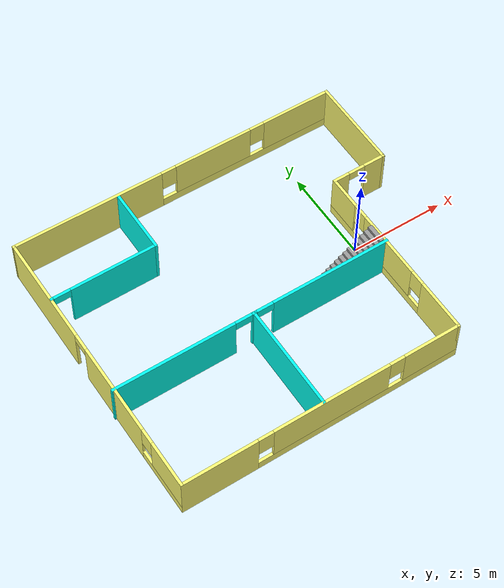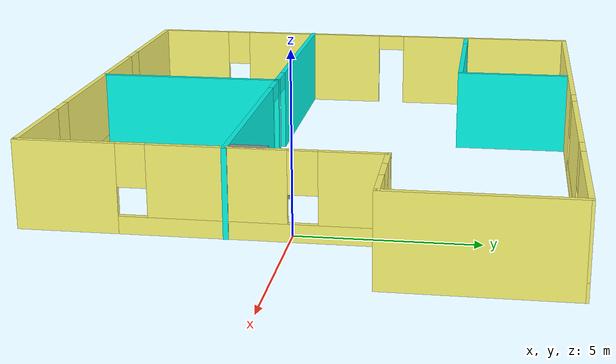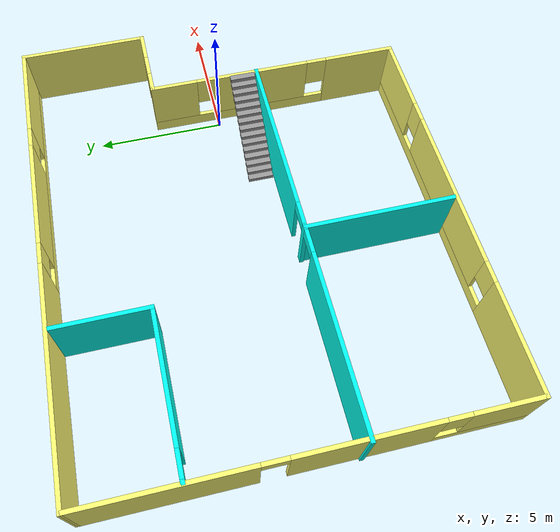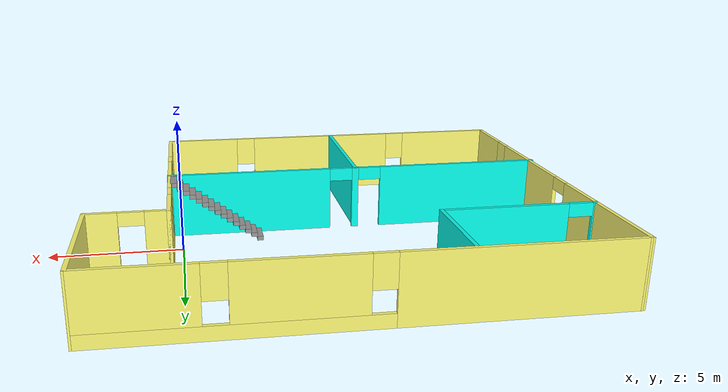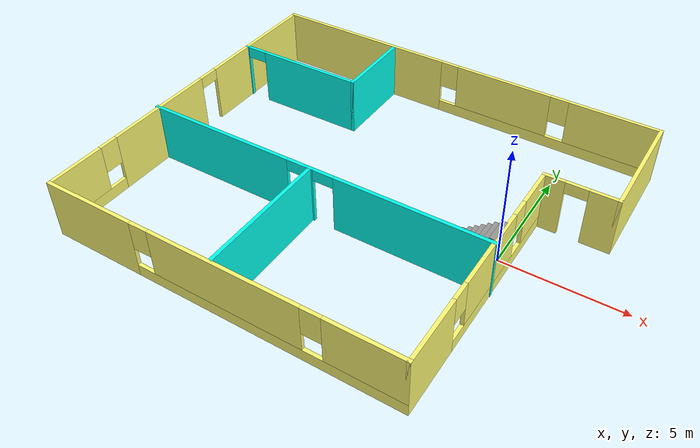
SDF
<?xml version='1.0'?>
<sdf version='1.6'>
  <model name='thuanld5_building'>
    <pose frame=''>-5.61753 0.112232 0 0 -0 0</pose>
    <link name='Stairs_0'>
      <visual name='Stairs_0_Visual_0'>
        <pose frame=''>2.62014 -1.19086 0.083333 0 -0 1.5708</pose>
        <geometry>
          <box>
            <size>1 0.233333 0.166667</size>
          </box>
        </geometry>
        <material>
          <script>
            <uri>file://media/materials/scripts/gazebo.material</uri>
            <name>Gazebo/Grey</name>
          </script>
          <ambient>1 1 1 1</ambient>
        </material>
        <meta>
          <layer>0</layer>
        </meta>
      </visual>
      <collision name='Stairs_0_Collision_0'>
        <geometry>
          <box>
            <size>1 0.233333 0.166667</size>
          </box>
        </geometry>
        <pose frame=''>2.62014 -1.19086 0.083333 0 -0 1.5708</pose>
      </collision>
      <visual name='Stairs_0_Visual_1'>
        <pose frame=''>2.85347 -1.19086 0.25 0 -0 1.5708</pose>
        <geometry>
          <box>
            <size>1 0.233333 0.166667</size>
          </box>
        </geometry>
        <material>
          <script>
            <uri>file://media/materials/scripts/gazebo.material</uri>
            <name>Gazebo/Grey</name>
          </script>
          <ambient>1 1 1 1</ambient>
        </material>
        <meta>
          <layer>0</layer>
        </meta>
      </visual>
      <collision name='Stairs_0_Collision_1'>
        <geometry>
          <box>
            <size>1 0.233333 0.166667</size>
          </box>
        </geometry>
        <pose frame=''>2.85347 -1.19086 0.25 0 -0 1.5708</pose>
      </collision>
      <visual name='Stairs_0_Visual_2'>
        <pose frame=''>3.0868 -1.19086 0.416667 0 -0 1.5708</pose>
        <geometry>
          <box>
            <size>1 0.233333 0.166667</size>
          </box>
        </geometry>
        <material>
          <script>
            <uri>file://media/materials/scripts/gazebo.material</uri>
            <name>Gazebo/Grey</name>
          </script>
          <ambient>1 1 1 1</ambient>
        </material>
        <meta>
          <layer>0</layer>
        </meta>
      </visual>
      <collision name='Stairs_0_Collision_2'>
        <geometry>
          <box>
            <size>1 0.233333 0.166667</size>
          </box>
        </geometry>
        <pose frame=''>3.0868 -1.19086 0.416667 0 -0 1.5708</pose>
      </collision>
      <visual name='Stairs_0_Visual_3'>
        <pose frame=''>3.32014 -1.19086 0.583333 0 -0 1.5708</pose>
        <geometry>
          <box>
            <size>1 0.233333 0.166667</size>
          </box>
        </geometry>
        <material>
          <script>
            <uri>file://media/materials/scripts/gazebo.material</uri>
            <name>Gazebo/Grey</name>
          </script>
          <ambient>1 1 1 1</ambient>
        </material>
        <meta>
          <layer>0</layer>
        </meta>
      </visual>
      <collision name='Stairs_0_Collision_3'>
        <geometry>
          <box>
            <size>1 0.233333 0.166667</size>
          </box>
        </geometry>
        <pose frame=''>3.32014 -1.19086 0.583333 0 -0 1.5708</pose>
      </collision>
      <visual name='Stairs_0_Visual_4'>
        <pose frame=''>3.55347 -1.19086 0.75 0 -0 1.5708</pose>
        <geometry>
          <box>
            <size>1 0.233333 0.166667</size>
          </box>
        </geometry>
        <material>
          <script>
            <uri>file://media/materials/scripts/gazebo.material</uri>
            <name>Gazebo/Grey</name>
          </script>
          <ambient>1 1 1 1</ambient>
        </material>
        <meta>
          <layer>0</layer>
        </meta>
      </visual>
      <collision name='Stairs_0_Collision_4'>
        <geometry>
          <box>
            <size>1 0.233333 0.166667</size>
          </box>
        </geometry>
        <pose frame=''>3.55347 -1.19086 0.75 0 -0 1.5708</pose>
      </collision>
      <visual name='Stairs_0_Visual_5'>
        <pose frame=''>3.7868 -1.19086 0.916667 0 -0 1.5708</pose>
        <geometry>
          <box>
            <size>1 0.233333 0.166667</size>
          </box>
        </geometry>
        <material>
          <script>
            <uri>file://media/materials/scripts/gazebo.material</uri>
            <name>Gazebo/Grey</name>
          </script>
          <ambient>1 1 1 1</ambient>
        </material>
        <meta>
          <layer>0</layer>
        </meta>
      </visual>
      <collision name='Stairs_0_Collision_5'>
        <geometry>
          <box>
            <size>1 0.233333 0.166667</size>
          </box>
        </geometry>
        <pose frame=''>3.7868 -1.19086 0.916667 0 -0 1.5708</pose>
      </collision>
      <visual name='Stairs_0_Visual_6'>
        <pose frame=''>4.02014 -1.19086 1.08333 0 -0 1.5708</pose>
        <geometry>
          <box>
            <size>1 0.233333 0.166667</size>
          </box>
        </geometry>
        <material>
          <script>
            <uri>file://media/materials/scripts/gazebo.material</uri>
            <name>Gazebo/Grey</name>
          </script>
          <ambient>1 1 1 1</ambient>
        </material>
        <meta>
          <layer>0</layer>
        </meta>
      </visual>
      <collision name='Stairs_0_Collision_6'>
        <geometry>
          <box>
            <size>1 0.233333 0.166667</size>
          </box>
        </geometry>
        <pose frame=''>4.02014 -1.19086 1.08333 0 -0 1.5708</pose>
      </collision>
      <visual name='Stairs_0_Visual_7'>
        <pose frame=''>4.25347 -1.19086 1.25 0 -0 1.5708</pose>
        <geometry>
          <box>
            <size>1 0.233333 0.166667</size>
          </box>
        </geometry>
        <material>
          <script>
            <uri>file://media/materials/scripts/gazebo.material</uri>
            <name>Gazebo/Grey</name>
          </script>
          <ambient>1 1 1 1</ambient>
        </material>
        <meta>
          <layer>0</layer>
        </meta>
      </visual>
      <collision name='Stairs_0_Collision_7'>
        <geometry>
          <box>
            <size>1 0.233333 0.166667</size>
          </box>
        </geometry>
        <pose frame=''>4.25347 -1.19086 1.25 0 -0 1.5708</pose>
      </collision>
      <visual name='Stairs_0_Visual_8'>
        <pose frame=''>4.4868 -1.19086 1.41667 0 -0 1.5708</pose>
        <geometry>
          <box>
            <size>1 0.233333 0.166667</size>
          </box>
        </geometry>
        <material>
          <script>
            <uri>file://media/materials/scripts/gazebo.material</uri>
            <name>Gazebo/Grey</name>
          </script>
          <ambient>1 1 1 1</ambient>
        </material>
        <meta>
          <layer>0</layer>
        </meta>
      </visual>
      <collision name='Stairs_0_Collision_8'>
        <geometry>
          <box>
            <size>1 0.233333 0.166667</size>
          </box>
        </geometry>
        <pose frame=''>4.4868 -1.19086 1.41667 0 -0 1.5708</pose>
      </collision>
      <visual name='Stairs_0_Visual_9'>
        <pose frame=''>4.72014 -1.19086 1.58333 0 -0 1.5708</pose>
        <geometry>
          <box>
            <size>1 0.233333 0.166667</size>
          </box>
        </geometry>
        <material>
          <script>
            <uri>file://media/materials/scripts/gazebo.material</uri>
            <name>Gazebo/Grey</name>
          </script>
          <ambient>1 1 1 1</ambient>
        </material>
        <meta>
          <layer>0</layer>
        </meta>
      </visual>
      <collision name='Stairs_0_Collision_9'>
        <geometry>
          <box>
            <size>1 0.233333 0.166667</size>
          </box>
        </geometry>
        <pose frame=''>4.72014 -1.19086 1.58333 0 -0 1.5708</pose>
      </collision>
      <visual name='Stairs_0_Visual_10'>
        <pose frame=''>4.95347 -1.19086 1.75 0 -0 1.5708</pose>
        <geometry>
          <box>
            <size>1 0.233333 0.166667</size>
          </box>
        </geometry>
        <material>
          <script>
            <uri>file://media/materials/scripts/gazebo.material</uri>
            <name>Gazebo/Grey</name>
          </script>
          <ambient>1 1 1 1</ambient>
        </material>
        <meta>
          <layer>0</layer>
        </meta>
      </visual>
      <collision name='Stairs_0_Collision_10'>
        <geometry>
          <box>
            <size>1 0.233333 0.166667</size>
          </box>
        </geometry>
        <pose frame=''>4.95347 -1.19086 1.75 0 -0 1.5708</pose>
      </collision>
      <visual name='Stairs_0_Visual_11'>
        <pose frame=''>5.1868 -1.19086 1.91667 0 -0 1.5708</pose>
        <geometry>
          <box>
            <size>1 0.233333 0.166667</size>
          </box>
        </geometry>
        <material>
          <script>
            <uri>file://media/materials/scripts/gazebo.material</uri>
            <name>Gazebo/Grey</name>
          </script>
          <ambient>1 1 1 1</ambient>
        </material>
        <meta>
          <layer>0</layer>
        </meta>
      </visual>
      <collision name='Stairs_0_Collision_11'>
        <geometry>
          <box>
            <size>1 0.233333 0.166667</size>
          </box>
        </geometry>
        <pose frame=''>5.1868 -1.19086 1.91667 0 -0 1.5708</pose>
      </collision>
      <visual name='Stairs_0_Visual_12'>
        <pose frame=''>5.42014 -1.19086 2.08333 0 -0 1.5708</pose>
        <geometry>
          <box>
            <size>1 0.233333 0.166667</size>
          </box>
        </geometry>
        <material>
          <script>
            <uri>file://media/materials/scripts/gazebo.material</uri>
            <name>Gazebo/Grey</name>
          </script>
          <ambient>1 1 1 1</ambient>
        </material>
        <meta>
          <layer>0</layer>
        </meta>
      </visual>
      <collision name='Stairs_0_Collision_12'>
        <geometry>
          <box>
            <size>1 0.233333 0.166667</size>
          </box>
        </geometry>
        <pose frame=''>5.42014 -1.19086 2.08333 0 -0 1.5708</pose>
      </collision>
      <visual name='Stairs_0_Visual_13'>
        <pose frame=''>5.65347 -1.19086 2.25 0 -0 1.5708</pose>
        <geometry>
          <box>
            <size>1 0.233333 0.166667</size>
          </box>
        </geometry>
        <material>
          <script>
            <uri>file://media/materials/scripts/gazebo.material</uri>
            <name>Gazebo/Grey</name>
          </script>
          <ambient>1 1 1 1</ambient>
        </material>
        <meta>
          <layer>0</layer>
        </meta>
      </visual>
      <collision name='Stairs_0_Collision_13'>
        <geometry>
          <box>
            <size>1 0.233333 0.166667</size>
          </box>
        </geometry>
        <pose frame=''>5.65347 -1.19086 2.25 0 -0 1.5708</pose>
      </collision>
      <visual name='Stairs_0_Visual_14'>
        <pose frame=''>5.8868 -1.19086 2.41667 0 -0 1.5708</pose>
        <geometry>
          <box>
            <size>1 0.233333 0.166667</size>
          </box>
        </geometry>
        <material>
          <script>
            <uri>file://media/materials/scripts/gazebo.material</uri>
            <name>Gazebo/Grey</name>
          </script>
          <ambient>1 1 1 1</ambient>
        </material>
        <meta>
          <layer>0</layer>
        </meta>
      </visual>
      <collision name='Stairs_0_Collision_14'>
        <geometry>
          <box>
            <size>1 0.233333 0.166667</size>
          </box>
        </geometry>
        <pose frame=''>5.8868 -1.19086 2.41667 0 -0 1.5708</pose>
      </collision>
    </link>
    <link name='Wall_1'>
      <pose frame=''>-8.81315 -0.000316 0 0 0 -1.5708</pose>
      <visual name='Wall_1_Visual_0'>
        <pose frame=''>-4.54954 0 1.25 0 -0 0</pose>
        <geometry>
          <box>
            <size>5.90092 0.15 2.5</size>
          </box>
        </geometry>
        <material>
          <script>
            <uri>file://media/materials/scripts/gazebo.material</uri>
            <name>Gazebo/Grey</name>
          </script>
          <ambient>1 0.984314 0.454902 1</ambient>
        </material>
        <meta>
          <layer>0</layer>
        </meta>
      </visual>
      <collision name='Wall_1_Collision_0'>
        <geometry>
          <box>
            <size>5.90092 0.15 2.5</size>
          </box>
        </geometry>
        <pose frame=''>-4.54954 0 1.25 0 -0 0</pose>
      </collision>
      <visual name='Wall_1_Visual_1'>
        <pose frame=''>1.75546 0 1.25 0 -0 0</pose>
        <geometry>
          <box>
            <size>4.90908 0.15 2.5</size>
          </box>
        </geometry>
        <material>
          <script>
            <uri>file://media/materials/scripts/gazebo.material</uri>
            <name>Gazebo/Grey</name>
          </script>
          <ambient>1 0.984314 0.454902 1</ambient>
        </material>
        <meta>
          <layer>0</layer>
        </meta>
      </visual>
      <collision name='Wall_1_Collision_1'>
        <geometry>
          <box>
            <size>4.90908 0.15 2.5</size>
          </box>
        </geometry>
        <pose frame=''>1.75546 0 1.25 0 -0 0</pose>
      </collision>
      <visual name='Wall_1_Visual_2'>
        <pose frame=''>5.855 0 0.25 0 -0 0</pose>
        <geometry>
          <box>
            <size>3.29 0.15 0.5</size>
          </box>
        </geometry>
        <material>
          <script>
            <uri>file://media/materials/scripts/gazebo.material</uri>
            <name>Gazebo/Grey</name>
          </script>
          <ambient>1 0.984314 0.454902 1</ambient>
        </material>
        <meta>
          <layer>0</layer>
        </meta>
      </visual>
      <collision name='Wall_1_Collision_2'>
        <geometry>
          <box>
            <size>3.29 0.15 0.5</size>
          </box>
        </geometry>
        <pose frame=''>5.855 0 0.25 0 -0 0</pose>
      </collision>
      <visual name='Wall_1_Visual_3'>
        <pose frame=''>6.255 0 1.5 0 -0 0</pose>
        <geometry>
          <box>
            <size>2.49 0.15 2</size>
          </box>
        </geometry>
        <material>
          <script>
            <uri>file://media/materials/scripts/gazebo.material</uri>
            <name>Gazebo/Grey</name>
          </script>
          <ambient>1 0.984314 0.454902 1</ambient>
        </material>
        <meta>
          <layer>0</layer>
        </meta>
      </visual>
      <collision name='Wall_1_Collision_3'>
        <geometry>
          <box>
            <size>2.49 0.15 2</size>
          </box>
        </geometry>
        <pose frame=''>6.255 0 1.5 0 -0 0</pose>
      </collision>
      <visual name='Wall_1_Visual_4'>
        <pose frame=''>4.61 0 1.9 0 -0 0</pose>
        <geometry>
          <box>
            <size>0.8 0.15 1.2</size>
          </box>
        </geometry>
        <material>
          <script>
            <uri>file://media/materials/scripts/gazebo.material</uri>
            <name>Gazebo/Grey</name>
          </script>
          <ambient>1 0.984314 0.454902 1</ambient>
        </material>
        <meta>
          <layer>0</layer>
        </meta>
      </visual>
      <collision name='Wall_1_Collision_4'>
        <geometry>
          <box>
            <size>0.8 0.15 1.2</size>
          </box>
        </geometry>
        <pose frame=''>4.61 0 1.9 0 -0 0</pose>
      </collision>
      <visual name='Wall_1_Visual_5'>
        <pose frame=''>-1.14908 0 2.25 0 -0 0</pose>
        <geometry>
          <box>
            <size>0.9 0.15 0.5</size>
          </box>
        </geometry>
        <material>
          <script>
            <uri>file://media/materials/scripts/gazebo.material</uri>
            <name>Gazebo/Grey</name>
          </script>
          <ambient>1 0.984314 0.454902 1</ambient>
        </material>
        <meta>
          <layer>0</layer>
        </meta>
      </visual>
      <collision name='Wall_1_Collision_5'>
        <geometry>
          <box>
            <size>0.9 0.15 0.5</size>
          </box>
        </geometry>
        <pose frame=''>-1.14908 0 2.25 0 -0 0</pose>
      </collision>
    </link>
    <link name='Wall_11'>
      <pose frame=''>0.036853 7.34968 0 0 0 -0.008474</pose>
      <visual name='Wall_11_Visual_0'>
        <pose frame=''>-4.85351 0 1.25 0 -0 0</pose>
        <geometry>
          <box>
            <size>8.14362 0.15 2.5</size>
          </box>
        </geometry>
        <material>
          <script>
            <uri>file://media/materials/scripts/gazebo.material</uri>
            <name>Gazebo/Grey</name>
          </script>
          <ambient>1 0.984314 0.454902 1</ambient>
        </material>
        <meta>
          <layer>0</layer>
        </meta>
      </visual>
      <collision name='Wall_11_Collision_0'>
        <geometry>
          <box>
            <size>8.14362 0.15 2.5</size>
          </box>
        </geometry>
        <pose frame=''>-4.85351 0 1.25 0 -0 0</pose>
      </collision>
      <visual name='Wall_11_Visual_1'>
        <pose frame=''>4.07181 0 0.25 0 -0 0</pose>
        <geometry>
          <box>
            <size>9.70702 0.15 0.5</size>
          </box>
        </geometry>
        <material>
          <script>
            <uri>file://media/materials/scripts/gazebo.material</uri>
            <name>Gazebo/Grey</name>
          </script>
          <ambient>1 0.984314 0.454902 1</ambient>
        </material>
        <meta>
          <layer>0</layer>
        </meta>
      </visual>
      <collision name='Wall_11_Collision_1'>
        <geometry>
          <box>
            <size>9.70702 0.15 0.5</size>
          </box>
        </geometry>
        <pose frame=''>4.07181 0 0.25 0 -0 0</pose>
      </collision>
      <visual name='Wall_11_Visual_2'>
        <pose frame=''>2.15497 0 1.5 0 -0 0</pose>
        <geometry>
          <box>
            <size>4.27333 0.15 2</size>
          </box>
        </geometry>
        <material>
          <script>
            <uri>file://media/materials/scripts/gazebo.material</uri>
            <name>Gazebo/Grey</name>
          </script>
          <ambient>1 0.984314 0.454902 1</ambient>
        </material>
        <meta>
          <layer>0</layer>
        </meta>
      </visual>
      <collision name='Wall_11_Collision_2'>
        <geometry>
          <box>
            <size>4.27333 0.15 2</size>
          </box>
        </geometry>
        <pose frame=''>2.15497 0 1.5 0 -0 0</pose>
      </collision>
      <visual name='Wall_11_Visual_3'>
        <pose frame=''>7.00848 0 1.5 0 -0 0</pose>
        <geometry>
          <box>
            <size>3.83368 0.15 2</size>
          </box>
        </geometry>
        <material>
          <script>
            <uri>file://media/materials/scripts/gazebo.material</uri>
            <name>Gazebo/Grey</name>
          </script>
          <ambient>1 0.984314 0.454902 1</ambient>
        </material>
        <meta>
          <layer>0</layer>
        </meta>
      </visual>
      <collision name='Wall_11_Collision_3'>
        <geometry>
          <box>
            <size>3.83368 0.15 2</size>
          </box>
        </geometry>
        <pose frame=''>7.00848 0 1.5 0 -0 0</pose>
      </collision>
      <visual name='Wall_11_Visual_4'>
        <pose frame=''>-0.381699 0 1.9 0 -0 0</pose>
        <geometry>
          <box>
            <size>0.8 0.15 1.2</size>
          </box>
        </geometry>
        <material>
          <script>
            <uri>file://media/materials/scripts/gazebo.material</uri>
            <name>Gazebo/Grey</name>
          </script>
          <ambient>1 0.984314 0.454902 1</ambient>
        </material>
        <meta>
          <layer>0</layer>
        </meta>
      </visual>
      <collision name='Wall_11_Collision_4'>
        <geometry>
          <box>
            <size>0.8 0.15 1.2</size>
          </box>
        </geometry>
        <pose frame=''>-0.381699 0 1.9 0 -0 0</pose>
      </collision>
      <visual name='Wall_11_Visual_5'>
        <pose frame=''>4.69163 0 1.9 0 -0 0</pose>
        <geometry>
          <box>
            <size>0.8 0.15 1.2</size>
          </box>
        </geometry>
        <material>
          <script>
            <uri>file://media/materials/scripts/gazebo.material</uri>
            <name>Gazebo/Grey</name>
          </script>
          <ambient>1 0.984314 0.454902 1</ambient>
        </material>
        <meta>
          <layer>0</layer>
        </meta>
      </visual>
      <collision name='Wall_11_Collision_5'>
        <geometry>
          <box>
            <size>0.8 0.15 1.2</size>
          </box>
        </geometry>
        <pose frame=''>4.69163 0 1.9 0 -0 0</pose>
      </collision>
    </link>
    <link name='Wall_13'>
      <pose frame=''>2.31733 -1.79572 0 0 -0 3.14159</pose>
      <visual name='Wall_13_Visual_0'>
        <pose frame=''>-0.580037 0 1.25 0 -0 0</pose>
        <geometry>
          <box>
            <size>6.48029 0.15 2.5</size>
          </box>
        </geometry>
        <material>
          <script>
            <uri>file://media/materials/scripts/gazebo.material</uri>
            <name>Gazebo/Grey</name>
          </script>
          <ambient>0.0117647 1 0.937255 1</ambient>
        </material>
        <meta>
          <layer>0</layer>
        </meta>
      </visual>
      <collision name='Wall_13_Collision_0'>
        <geometry>
          <box>
            <size>6.48029 0.15 2.5</size>
          </box>
        </geometry>
        <pose frame=''>-0.580037 0 1.25 0 -0 0</pose>
      </collision>
      <visual name='Wall_13_Visual_1'>
        <pose frame=''>3.69014 0 1.25 0 -0 0</pose>
        <geometry>
          <box>
            <size>0.260074 0.15 2.5</size>
          </box>
        </geometry>
        <material>
          <script>
            <uri>file://media/materials/scripts/gazebo.material</uri>
            <name>Gazebo/Grey</name>
          </script>
          <ambient>0.0117647 1 0.937255 1</ambient>
        </material>
        <meta>
          <layer>0</layer>
        </meta>
      </visual>
      <collision name='Wall_13_Collision_1'>
        <geometry>
          <box>
            <size>0.260074 0.15 2.5</size>
          </box>
        </geometry>
        <pose frame=''>3.69014 0 1.25 0 -0 0</pose>
      </collision>
      <visual name='Wall_13_Visual_2'>
        <pose frame=''>3.11011 0 2.25 0 -0 0</pose>
        <geometry>
          <box>
            <size>0.9 0.15 0.5</size>
          </box>
        </geometry>
        <material>
          <script>
            <uri>file://media/materials/scripts/gazebo.material</uri>
            <name>Gazebo/Grey</name>
          </script>
          <ambient>0.0117647 1 0.937255 1</ambient>
        </material>
        <meta>
          <layer>0</layer>
        </meta>
      </visual>
      <collision name='Wall_13_Collision_2'>
        <geometry>
          <box>
            <size>0.9 0.15 0.5</size>
          </box>
        </geometry>
        <pose frame=''>3.11011 0 2.25 0 -0 0</pose>
      </collision>
    </link>
    <link name='Wall_14'>
      <collision name='Wall_14_Collision'>
        <geometry>
          <box>
            <size>5.75 0.15 2.5</size>
          </box>
        </geometry>
        <pose frame=''>0 0 1.25 0 -0 0</pose>
      </collision>
      <visual name='Wall_14_Visual'>
        <pose frame=''>0 0 1.25 0 -0 0</pose>
        <geometry>
          <box>
            <size>5.75 0.15 2.5</size>
          </box>
        </geometry>
        <material>
          <script>
            <uri>file://media/materials/scripts/gazebo.material</uri>
            <name>Gazebo/Grey</name>
          </script>
          <ambient>0.0117647 1 0.937255 1</ambient>
        </material>
        <meta>
          <layer>0</layer>
        </meta>
      </visual>
      <pose frame=''>-1.38211 -4.59572 0 0 0 -1.5708</pose>
    </link>
    <link name='Wall_17'>
      <pose frame=''>-5.15767 -1.79572 0 0 -0 3.14159</pose>
      <visual name='Wall_17_Visual_0'>
        <pose frame=''>-3.72955 0 1.25 0 -0 0</pose>
        <geometry>
          <box>
            <size>0.150543 0.15 2.5</size>
          </box>
        </geometry>
        <material>
          <script>
            <uri>file://media/materials/scripts/gazebo.material</uri>
            <name>Gazebo/Grey</name>
          </script>
          <ambient>0.0117647 1 0.937255 1</ambient>
        </material>
        <meta>
          <layer>0</layer>
        </meta>
      </visual>
      <collision name='Wall_17_Collision_0'>
        <geometry>
          <box>
            <size>0.150543 0.15 2.5</size>
          </box>
        </geometry>
        <pose frame=''>-3.72955 0 1.25 0 -0 0</pose>
      </collision>
      <visual name='Wall_17_Visual_1'>
        <pose frame=''>0.525272 0 1.25 0 -0 0</pose>
        <geometry>
          <box>
            <size>6.55909 0.15 2.5</size>
          </box>
        </geometry>
        <material>
          <script>
            <uri>file://media/materials/scripts/gazebo.material</uri>
            <name>Gazebo/Grey</name>
          </script>
          <ambient>0.0117647 1 0.937255 1</ambient>
        </material>
        <meta>
          <layer>0</layer>
        </meta>
      </visual>
      <collision name='Wall_17_Collision_1'>
        <geometry>
          <box>
            <size>6.55909 0.15 2.5</size>
          </box>
        </geometry>
        <pose frame=''>0.525272 0 1.25 0 -0 0</pose>
      </collision>
      <visual name='Wall_17_Visual_2'>
        <pose frame=''>-3.20427 0 2.25 0 -0 0</pose>
        <geometry>
          <box>
            <size>0.9 0.15 0.5</size>
          </box>
        </geometry>
        <material>
          <script>
            <uri>file://media/materials/scripts/gazebo.material</uri>
            <name>Gazebo/Grey</name>
          </script>
          <ambient>0.0117647 1 0.937255 1</ambient>
        </material>
        <meta>
          <layer>0</layer>
        </meta>
      </visual>
      <collision name='Wall_17_Collision_2'>
        <geometry>
          <box>
            <size>0.9 0.15 0.5</size>
          </box>
        </geometry>
        <pose frame=''>-3.20427 0 2.25 0 -0 0</pose>
      </collision>
    </link>
    <link name='Wall_19'>
      <pose frame=''>-5.9804 3.89673 0 0 -0 0</pose>
      <visual name='Wall_19_Visual_0'>
        <pose frame=''>-2.79259 0 1.25 0 -0 0</pose>
        <geometry>
          <box>
            <size>0.16482 0.15 2.5</size>
          </box>
        </geometry>
        <material>
          <script>
            <uri>file://media/materials/scripts/gazebo.material</uri>
            <name>Gazebo/Grey</name>
          </script>
          <ambient>0.0117647 1 0.937255 1</ambient>
        </material>
        <meta>
          <layer>0</layer>
        </meta>
      </visual>
      <collision name='Wall_19_Collision_0'>
        <geometry>
          <box>
            <size>0.16482 0.15 2.5</size>
          </box>
        </geometry>
        <pose frame=''>-2.79259 0 1.25 0 -0 0</pose>
      </collision>
      <visual name='Wall_19_Visual_1'>
        <pose frame=''>0.53241 0 1.25 0 -0 0</pose>
        <geometry>
          <box>
            <size>4.68518 0.15 2.5</size>
          </box>
        </geometry>
        <material>
          <script>
            <uri>file://media/materials/scripts/gazebo.material</uri>
            <name>Gazebo/Grey</name>
          </script>
          <ambient>0.0117647 1 0.937255 1</ambient>
        </material>
        <meta>
          <layer>0</layer>
        </meta>
      </visual>
      <collision name='Wall_19_Collision_1'>
        <geometry>
          <box>
            <size>4.68518 0.15 2.5</size>
          </box>
        </geometry>
        <pose frame=''>0.53241 0 1.25 0 -0 0</pose>
      </collision>
      <visual name='Wall_19_Visual_2'>
        <pose frame=''>-2.26018 0 2.25 0 -0 0</pose>
        <geometry>
          <box>
            <size>0.9 0.15 0.5</size>
          </box>
        </geometry>
        <material>
          <script>
            <uri>file://media/materials/scripts/gazebo.material</uri>
            <name>Gazebo/Grey</name>
          </script>
          <ambient>0.0117647 1 0.937255 1</ambient>
        </material>
        <meta>
          <layer>0</layer>
        </meta>
      </visual>
      <collision name='Wall_19_Collision_2'>
        <geometry>
          <box>
            <size>0.9 0.15 0.5</size>
          </box>
        </geometry>
        <pose frame=''>-2.26018 0 2.25 0 -0 0</pose>
      </collision>
    </link>
    <link name='Wall_22'>
      <collision name='Wall_22_Collision'>
        <geometry>
          <box>
            <size>3.5 0.15 2.5</size>
          </box>
        </geometry>
        <pose frame=''>0 0 1.25 0 -0 0</pose>
      </collision>
      <visual name='Wall_22_Visual'>
        <pose frame=''>0 0 1.25 0 -0 0</pose>
        <geometry>
          <box>
            <size>3.5 0.15 2.5</size>
          </box>
        </geometry>
        <material>
          <script>
            <uri>file://media/materials/scripts/gazebo.material</uri>
            <name>Gazebo/Grey</name>
          </script>
          <ambient>0.0117647 1 0.937255 1</ambient>
        </material>
        <meta>
          <layer>0</layer>
        </meta>
      </visual>
      <pose frame=''>-3.1804 5.57173 0 0 -0 1.5708</pose>
    </link>
    <link name='Wall_3'>
      <pose frame=''>-1.38815 -7.42532 0 0 -0 0</pose>
      <visual name='Wall_3_Visual_0'>
        <pose frame=''>-5.48932 0 1.25 0 -0 0</pose>
        <geometry>
          <box>
            <size>4.02135 0.15 2.5</size>
          </box>
        </geometry>
        <material>
          <script>
            <uri>file://media/materials/scripts/gazebo.material</uri>
            <name>Gazebo/Grey</name>
          </script>
          <ambient>1 0.984314 0.454902 1</ambient>
        </material>
        <meta>
          <layer>0</layer>
        </meta>
      </visual>
      <collision name='Wall_3_Collision_0'>
        <geometry>
          <box>
            <size>4.02135 0.15 2.5</size>
          </box>
        </geometry>
        <pose frame=''>-5.48932 0 1.25 0 -0 0</pose>
      </collision>
      <visual name='Wall_3_Visual_1'>
        <pose frame=''>2.01068 0 0.25 0 -0 0</pose>
        <geometry>
          <box>
            <size>10.9786 0.15 0.5</size>
          </box>
        </geometry>
        <material>
          <script>
            <uri>file://media/materials/scripts/gazebo.material</uri>
            <name>Gazebo/Grey</name>
          </script>
          <ambient>1 0.984314 0.454902 1</ambient>
        </material>
        <meta>
          <layer>0</layer>
        </meta>
      </visual>
      <collision name='Wall_3_Collision_1'>
        <geometry>
          <box>
            <size>10.9786 0.15 0.5</size>
          </box>
        </geometry>
        <pose frame=''>2.01068 0 0.25 0 -0 0</pose>
      </collision>
      <visual name='Wall_3_Visual_2'>
        <pose frame=''>0.461355 0 1.5 0 -0 0</pose>
        <geometry>
          <box>
            <size>6.28 0.15 2</size>
          </box>
        </geometry>
        <material>
          <script>
            <uri>file://media/materials/scripts/gazebo.material</uri>
            <name>Gazebo/Grey</name>
          </script>
          <ambient>1 0.984314 0.454902 1</ambient>
        </material>
        <meta>
          <layer>0</layer>
        </meta>
      </visual>
      <collision name='Wall_3_Collision_2'>
        <geometry>
          <box>
            <size>6.28 0.15 2</size>
          </box>
        </geometry>
        <pose frame=''>0.461355 0 1.5 0 -0 0</pose>
      </collision>
      <visual name='Wall_3_Visual_3'>
        <pose frame=''>5.95068 0 1.5 0 -0 0</pose>
        <geometry>
          <box>
            <size>3.09864 0.15 2</size>
          </box>
        </geometry>
        <material>
          <script>
            <uri>file://media/materials/scripts/gazebo.material</uri>
            <name>Gazebo/Grey</name>
          </script>
          <ambient>1 0.984314 0.454902 1</ambient>
        </material>
        <meta>
          <layer>0</layer>
        </meta>
      </visual>
      <collision name='Wall_3_Collision_3'>
        <geometry>
          <box>
            <size>3.09864 0.15 2</size>
          </box>
        </geometry>
        <pose frame=''>5.95068 0 1.5 0 -0 0</pose>
      </collision>
      <visual name='Wall_3_Visual_4'>
        <pose frame=''>-3.07864 0 1.9 0 -0 0</pose>
        <geometry>
          <box>
            <size>0.8 0.15 1.2</size>
          </box>
        </geometry>
        <material>
          <script>
            <uri>file://media/materials/scripts/gazebo.material</uri>
            <name>Gazebo/Grey</name>
          </script>
          <ambient>1 0.984314 0.454902 1</ambient>
        </material>
        <meta>
          <layer>0</layer>
        </meta>
      </visual>
      <collision name='Wall_3_Collision_4'>
        <geometry>
          <box>
            <size>0.8 0.15 1.2</size>
          </box>
        </geometry>
        <pose frame=''>-3.07864 0 1.9 0 -0 0</pose>
      </collision>
      <visual name='Wall_3_Visual_5'>
        <pose frame=''>4.00136 0 1.9 0 -0 0</pose>
        <geometry>
          <box>
            <size>0.8 0.15 1.2</size>
          </box>
        </geometry>
        <material>
          <script>
            <uri>file://media/materials/scripts/gazebo.material</uri>
            <name>Gazebo/Grey</name>
          </script>
          <ambient>1 0.984314 0.454902 1</ambient>
        </material>
        <meta>
          <layer>0</layer>
        </meta>
      </visual>
      <collision name='Wall_3_Collision_5'>
        <geometry>
          <box>
            <size>0.8 0.15 1.2</size>
          </box>
        </geometry>
        <pose frame=''>4.00136 0 1.9 0 -0 0</pose>
      </collision>
    </link>
    <link name='Wall_5'>
      <pose frame=''>6.03685 -2.50032 0 0 -0 1.5708</pose>
      <visual name='Wall_5_Visual_0'>
        <pose frame=''>-3.595 0 1.25 0 -0 0</pose>
        <geometry>
          <box>
            <size>2.81 0.15 2.5</size>
          </box>
        </geometry>
        <material>
          <script>
            <uri>file://media/materials/scripts/gazebo.material</uri>
            <name>Gazebo/Grey</name>
          </script>
          <ambient>1 0.984314 0.454902 1</ambient>
        </material>
        <meta>
          <layer>0</layer>
        </meta>
      </visual>
      <collision name='Wall_5_Collision_0'>
        <geometry>
          <box>
            <size>2.81 0.15 2.5</size>
          </box>
        </geometry>
        <pose frame=''>-3.595 0 1.25 0 -0 0</pose>
      </collision>
      <visual name='Wall_5_Visual_1'>
        <pose frame=''>1.405 0 0.25 0 -0 0</pose>
        <geometry>
          <box>
            <size>7.19 0.15 0.5</size>
          </box>
        </geometry>
        <material>
          <script>
            <uri>file://media/materials/scripts/gazebo.material</uri>
            <name>Gazebo/Grey</name>
          </script>
          <ambient>1 0.984314 0.454902 1</ambient>
        </material>
        <meta>
          <layer>0</layer>
        </meta>
      </visual>
      <collision name='Wall_5_Collision_1'>
        <geometry>
          <box>
            <size>7.19 0.15 0.5</size>
          </box>
        </geometry>
        <pose frame=''>1.405 0 0.25 0 -0 0</pose>
      </collision>
      <visual name='Wall_5_Visual_2'>
        <pose frame=''>0.475808 0 1.5 0 -0 0</pose>
        <geometry>
          <box>
            <size>3.73162 0.15 2</size>
          </box>
        </geometry>
        <material>
          <script>
            <uri>file://media/materials/scripts/gazebo.material</uri>
            <name>Gazebo/Grey</name>
          </script>
          <ambient>1 0.984314 0.454902 1</ambient>
        </material>
        <meta>
          <layer>0</layer>
        </meta>
      </visual>
      <collision name='Wall_5_Collision_2'>
        <geometry>
          <box>
            <size>3.73162 0.15 2</size>
          </box>
        </geometry>
        <pose frame=''>0.475808 0 1.5 0 -0 0</pose>
      </collision>
      <visual name='Wall_5_Visual_3'>
        <pose frame=''>4.07081 0 1.5 0 -0 0</pose>
        <geometry>
          <box>
            <size>1.85838 0.15 2</size>
          </box>
        </geometry>
        <material>
          <script>
            <uri>file://media/materials/scripts/gazebo.material</uri>
            <name>Gazebo/Grey</name>
          </script>
          <ambient>1 0.984314 0.454902 1</ambient>
        </material>
        <meta>
          <layer>0</layer>
        </meta>
      </visual>
      <collision name='Wall_5_Collision_3'>
        <geometry>
          <box>
            <size>1.85838 0.15 2</size>
          </box>
        </geometry>
        <pose frame=''>4.07081 0 1.5 0 -0 0</pose>
      </collision>
      <visual name='Wall_5_Visual_4'>
        <pose frame=''>-1.79 0 1.9 0 -0 0</pose>
        <geometry>
          <box>
            <size>0.8 0.15 1.2</size>
          </box>
        </geometry>
        <material>
          <script>
            <uri>file://media/materials/scripts/gazebo.material</uri>
            <name>Gazebo/Grey</name>
          </script>
          <ambient>1 0.984314 0.454902 1</ambient>
        </material>
        <meta>
          <layer>0</layer>
        </meta>
      </visual>
      <collision name='Wall_5_Collision_4'>
        <geometry>
          <box>
            <size>0.8 0.15 1.2</size>
          </box>
        </geometry>
        <pose frame=''>-1.79 0 1.9 0 -0 0</pose>
      </collision>
      <visual name='Wall_5_Visual_5'>
        <pose frame=''>2.74162 0 1.9 0 -0 0</pose>
        <geometry>
          <box>
            <size>0.8 0.15 1.2</size>
          </box>
        </geometry>
        <material>
          <script>
            <uri>file://media/materials/scripts/gazebo.material</uri>
            <name>Gazebo/Grey</name>
          </script>
          <ambient>1 0.984314 0.454902 1</ambient>
        </material>
        <meta>
          <layer>0</layer>
        </meta>
      </visual>
      <collision name='Wall_5_Collision_5'>
        <geometry>
          <box>
            <size>0.8 0.15 1.2</size>
          </box>
        </geometry>
        <pose frame=''>2.74162 0 1.9 0 -0 0</pose>
      </collision>
    </link>
    <link name='Wall_7'>
      <pose frame=''>7.46185 2.42468 0 0 -0 0</pose>
      <visual name='Wall_7_Visual_0'>
        <pose frame=''>-1.04926 0 1.25 0 -0 0</pose>
        <geometry>
          <box>
            <size>0.901473 0.15 2.5</size>
          </box>
        </geometry>
        <material>
          <script>
            <uri>file://media/materials/scripts/gazebo.material</uri>
            <name>Gazebo/Grey</name>
          </script>
          <ambient>1 0.984314 0.454902 1</ambient>
        </material>
        <meta>
          <layer>0</layer>
        </meta>
      </visual>
      <collision name='Wall_7_Collision_0'>
        <geometry>
          <box>
            <size>0.901473 0.15 2.5</size>
          </box>
        </geometry>
        <pose frame=''>-1.04926 0 1.25 0 -0 0</pose>
      </collision>
      <visual name='Wall_7_Visual_1'>
        <pose frame=''>0.900737 0 1.25 0 -0 0</pose>
        <geometry>
          <box>
            <size>1.19853 0.15 2.5</size>
          </box>
        </geometry>
        <material>
          <script>
            <uri>file://media/materials/scripts/gazebo.material</uri>
            <name>Gazebo/Grey</name>
          </script>
          <ambient>1 0.984314 0.454902 1</ambient>
        </material>
        <meta>
          <layer>0</layer>
        </meta>
      </visual>
      <collision name='Wall_7_Collision_1'>
        <geometry>
          <box>
            <size>1.19853 0.15 2.5</size>
          </box>
        </geometry>
        <pose frame=''>0.900737 0 1.25 0 -0 0</pose>
      </collision>
      <visual name='Wall_7_Visual_2'>
        <pose frame=''>-0.148527 0 2.25 0 -0 0</pose>
        <geometry>
          <box>
            <size>0.9 0.15 0.5</size>
          </box>
        </geometry>
        <material>
          <script>
            <uri>file://media/materials/scripts/gazebo.material</uri>
            <name>Gazebo/Grey</name>
          </script>
          <ambient>1 0.984314 0.454902 1</ambient>
        </material>
        <meta>
          <layer>0</layer>
        </meta>
      </visual>
      <collision name='Wall_7_Collision_2'>
        <geometry>
          <box>
            <size>0.9 0.15 0.5</size>
          </box>
        </geometry>
        <pose frame=''>-0.148527 0 2.25 0 -0 0</pose>
      </collision>
    </link>
    <link name='Wall_9'>
      <collision name='Wall_9_Collision'>
        <geometry>
          <box>
            <size>5 0.15 2.5</size>
          </box>
        </geometry>
        <pose frame=''>0 0 1.25 0 -0 0</pose>
      </collision>
      <visual name='Wall_9_Visual'>
        <pose frame=''>0 0 1.25 0 -0 0</pose>
        <geometry>
          <box>
            <size>5 0.15 2.5</size>
          </box>
        </geometry>
        <material>
          <script>
            <uri>file://media/materials/scripts/gazebo.material</uri>
            <name>Gazebo/Grey</name>
          </script>
          <ambient>1 0.984314 0.454902 1</ambient>
        </material>
        <meta>
          <layer>0</layer>
        </meta>
      </visual>
      <pose frame=''>8.88685 4.84968 0 0 -0 1.5708</pose>
    </link>
    <static>1</static>
  </model>
</sdf>
